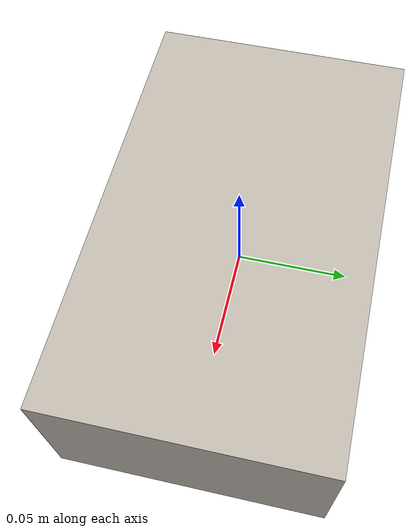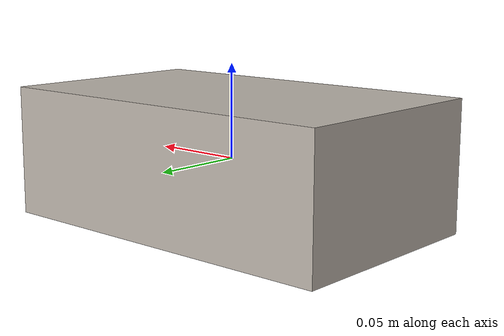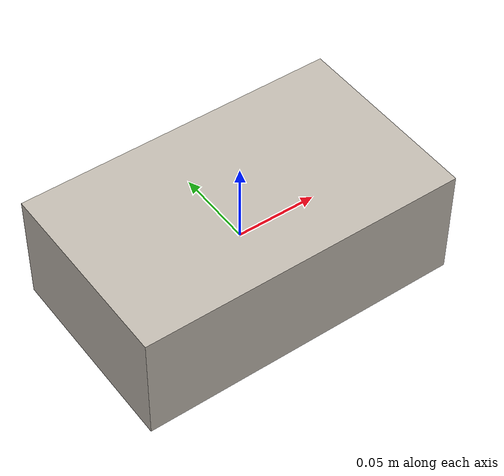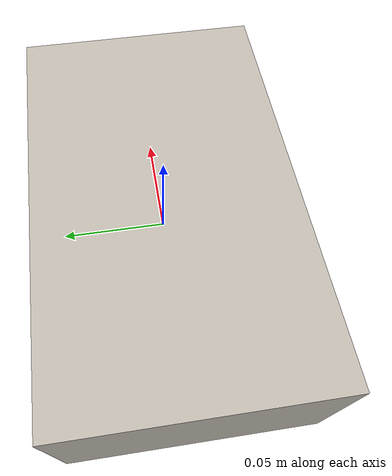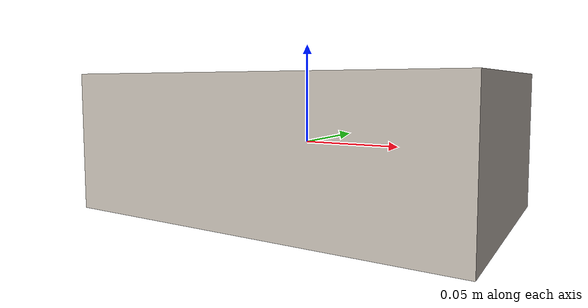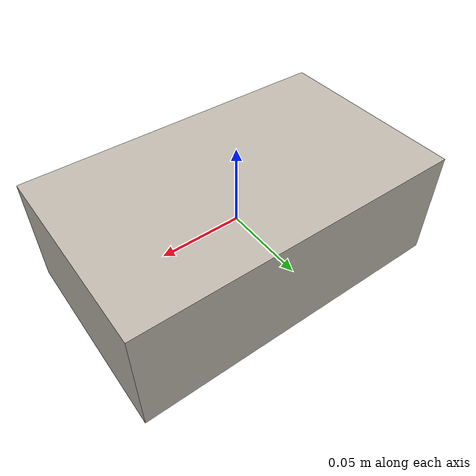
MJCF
<mujoco model="vla82_vla82_050__aux_05">
  <compiler angle="radian"/>
  <asset>
    <texture name="source_texture" type="2d" file="source_texture.png"/>
    <material name="source_material" texture="source_texture" rgba="1 1 1 1"/>
  </asset>
  <default>
    <default class="visual"><geom contype="0" conaffinity="0" group="1"/></default>
    <default class="collision"><geom contype="1" conaffinity="1" group="0" density="300" friction="0.45 0.004 0.0001" solref="0.02 1" solimp="0.9 0.95 0.001"/></default>
    <default class="region"><geom contype="0" conaffinity="0" group="1" rgba="0 1 0 0" mass="0"/></default>
  </default>
  <worldbody><body><body name="object">
    <geom name="visual" class="visual" type="box" size="0.100000 0.060000 0.035000" material="source_material"/>
    <geom name="collision" class="collision" type="box" size="0.100000 0.060000 0.035000"/>
    <geom name="reg_bbox" class="region" type="box" pos="0 0 0" size="0.100000 0.060000 0.035000"/>
  </body></body></worldbody>
  <actuator/>
</mujoco>
